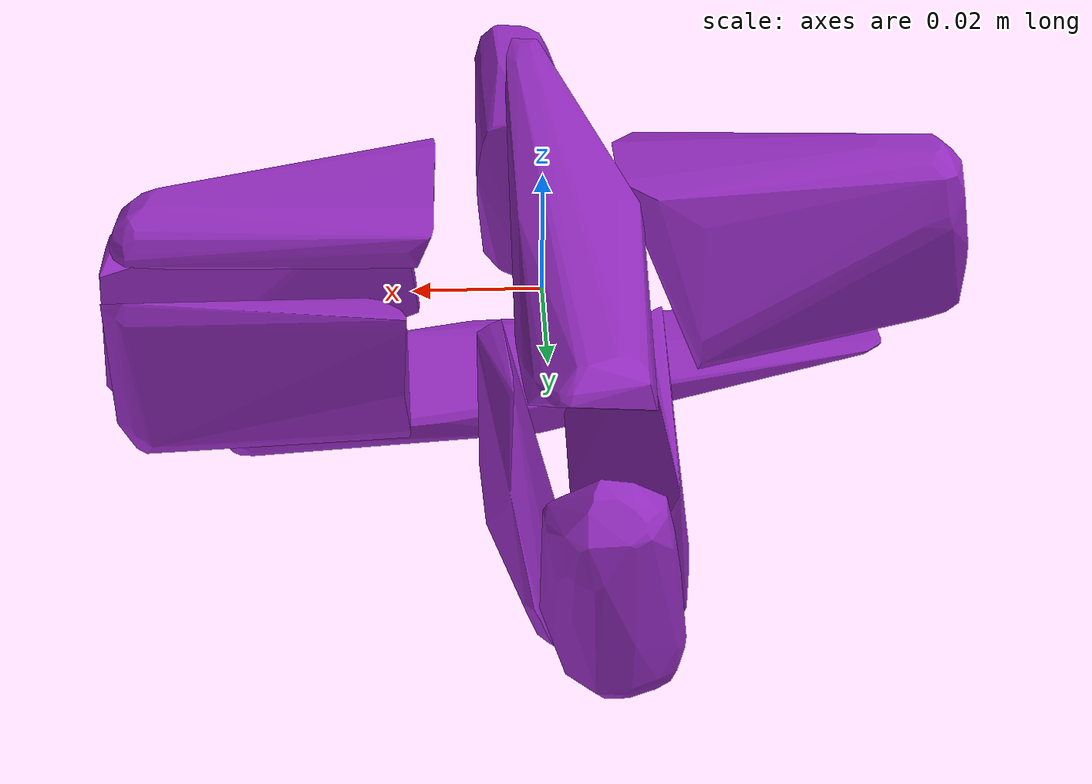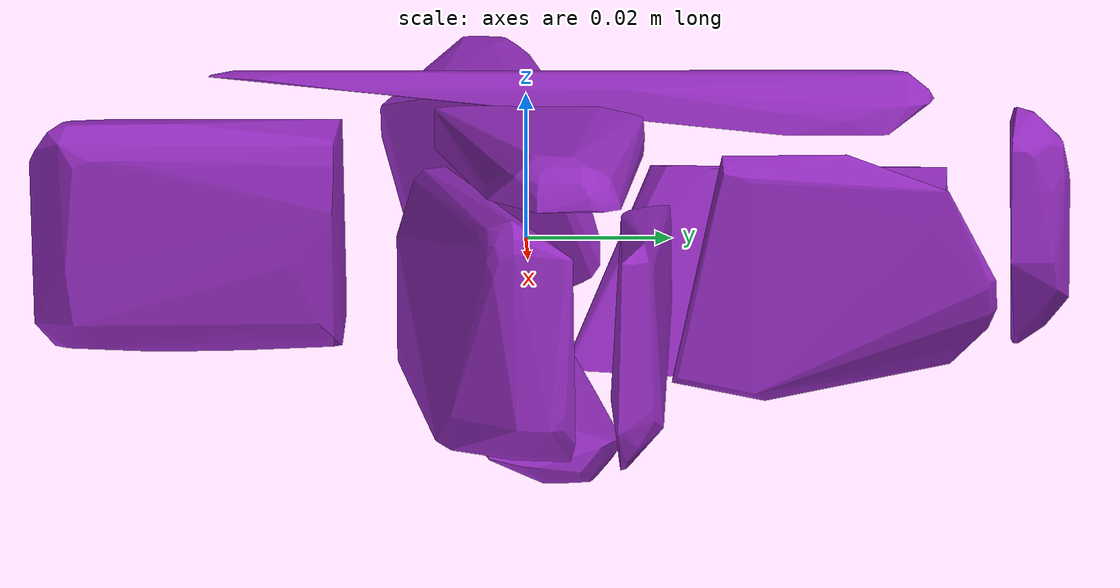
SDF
<?xml version='1.0' encoding='UTF-8'?>
<!-- This SDF was autogenerated by obj_to_drake_sdf.py -->
<sdf version="1.7">
  <model name="plus_video">
    <link name="plus_video">
      <inertial>
        <pose>0 0 0 0 0 0</pose>
        <mass>0.05</mass>
        <inertia>
          <ixx>5.5775205e-05</ixx>
          <iyy>5.9516009e-05</iyy>
          <izz>9.9417919e-05</izz>
          <ixy>-3.379369e-07</ixy>
          <ixz>3.5626887e-06</ixz>
          <iyz>9.5184142e-07</iyz>
        </inertia>
      </inertial>
      <visual name="convex_0">
        <pose>0 0 0 0 0 0</pose>
        <geometry>
          <mesh>
            <uri>plus_video_convex_0.obj</uri>
          </mesh>
        </geometry>
        <material>
          <diffuse>0.5882352941176471 0.17254901960784313 0.7607843137254902 1</diffuse>
        </material>
      </visual>
      <collision name="convex_0_volume">
        <pose>0 0 0 0 0 0</pose>
        <geometry>
          <mesh>
            <uri>plus_video_convex_0.obj</uri>
          </mesh>
        </geometry>
        <drake:proximity_properties xmlns:drake="uri:drake">
          <drake:compliant_hydroelastic/>
          <drake:hydroelastic_modulus> 3.0e7 </drake:hydroelastic_modulus>
          <drake:mesh_resolution_hint> 0.02 </drake:mesh_resolution_hint>
          <drake:hunt_crossley_dissipation>10</drake:hunt_crossley_dissipation>
          <drake:mu_dynamic>0.3</drake:mu_dynamic>
        </drake:proximity_properties>
      </collision>
      <visual name="convex_1">
        <pose>0 0 0 0 0 0</pose>
        <geometry>
          <mesh>
            <uri>plus_video_convex_1.obj</uri>
          </mesh>
        </geometry>
        <material>
          <diffuse>0.5882352941176471 0.17254901960784313 0.7607843137254902 1</diffuse>
        </material>
      </visual>
      <collision name="convex_1_volume">
        <pose>0 0 0 0 0 0</pose>
        <geometry>
          <mesh>
            <uri>plus_video_convex_1.obj</uri>
          </mesh>
        </geometry>
        <drake:proximity_properties xmlns:drake="uri:drake">
          <drake:compliant_hydroelastic/>
          <drake:hydroelastic_modulus> 3.0e7 </drake:hydroelastic_modulus>
          <drake:mesh_resolution_hint> 0.02 </drake:mesh_resolution_hint>
          <drake:hunt_crossley_dissipation>10</drake:hunt_crossley_dissipation>
          <drake:mu_dynamic>0.3</drake:mu_dynamic>
        </drake:proximity_properties>
      </collision>
      <visual name="convex_2">
        <pose>0 0 0 0 0 0</pose>
        <geometry>
          <mesh>
            <uri>plus_video_convex_2.obj</uri>
          </mesh>
        </geometry>
        <material>
          <diffuse>0.5882352941176471 0.17254901960784313 0.7607843137254902 1</diffuse>
        </material>
      </visual>
      <collision name="convex_2_volume">
        <pose>0 0 0 0 0 0</pose>
        <geometry>
          <mesh>
            <uri>plus_video_convex_2.obj</uri>
          </mesh>
        </geometry>
        <drake:proximity_properties xmlns:drake="uri:drake">
          <drake:compliant_hydroelastic/>
          <drake:hydroelastic_modulus> 3.0e7 </drake:hydroelastic_modulus>
          <drake:mesh_resolution_hint> 0.02 </drake:mesh_resolution_hint>
          <drake:hunt_crossley_dissipation>10</drake:hunt_crossley_dissipation>
          <drake:mu_dynamic>0.3</drake:mu_dynamic>
        </drake:proximity_properties>
      </collision>
      <visual name="convex_3">
        <pose>0 0 0 0 0 0</pose>
        <geometry>
          <mesh>
            <uri>plus_video_convex_3.obj</uri>
          </mesh>
        </geometry>
        <material>
          <diffuse>0.5882352941176471 0.17254901960784313 0.7607843137254902 1</diffuse>
        </material>
      </visual>
      <collision name="convex_3_volume">
        <pose>0 0 0 0 0 0</pose>
        <geometry>
          <mesh>
            <uri>plus_video_convex_3.obj</uri>
          </mesh>
        </geometry>
        <drake:proximity_properties xmlns:drake="uri:drake">
          <drake:compliant_hydroelastic/>
          <drake:hydroelastic_modulus> 3.0e7 </drake:hydroelastic_modulus>
          <drake:mesh_resolution_hint> 0.02 </drake:mesh_resolution_hint>
          <drake:hunt_crossley_dissipation>10</drake:hunt_crossley_dissipation>
          <drake:mu_dynamic>0.3</drake:mu_dynamic>
        </drake:proximity_properties>
      </collision>
      <visual name="convex_4">
        <pose>0 0 0 0 0 0</pose>
        <geometry>
          <mesh>
            <uri>plus_video_convex_4.obj</uri>
          </mesh>
        </geometry>
        <material>
          <diffuse>0.5882352941176471 0.17254901960784313 0.7607843137254902 1</diffuse>
        </material>
      </visual>
      <collision name="convex_4_volume">
        <pose>0 0 0 0 0 0</pose>
        <geometry>
          <mesh>
            <uri>plus_video_convex_4.obj</uri>
          </mesh>
        </geometry>
        <drake:proximity_properties xmlns:drake="uri:drake">
          <drake:compliant_hydroelastic/>
          <drake:hydroelastic_modulus> 3.0e7 </drake:hydroelastic_modulus>
          <drake:mesh_resolution_hint> 0.02 </drake:mesh_resolution_hint>
          <drake:hunt_crossley_dissipation>10</drake:hunt_crossley_dissipation>
          <drake:mu_dynamic>0.3</drake:mu_dynamic>
        </drake:proximity_properties>
      </collision>
      <visual name="convex_5">
        <pose>0 0 0 0 0 0</pose>
        <geometry>
          <mesh>
            <uri>plus_video_convex_5.obj</uri>
          </mesh>
        </geometry>
        <material>
          <diffuse>0.5882352941176471 0.17254901960784313 0.7607843137254902 1</diffuse>
        </material>
      </visual>
      <collision name="convex_5_volume">
        <pose>0 0 0 0 0 0</pose>
        <geometry>
          <mesh>
            <uri>plus_video_convex_5.obj</uri>
          </mesh>
        </geometry>
        <drake:proximity_properties xmlns:drake="uri:drake">
          <drake:compliant_hydroelastic/>
          <drake:hydroelastic_modulus> 3.0e7 </drake:hydroelastic_modulus>
          <drake:mesh_resolution_hint> 0.02 </drake:mesh_resolution_hint>
          <drake:hunt_crossley_dissipation>10</drake:hunt_crossley_dissipation>
          <drake:mu_dynamic>0.3</drake:mu_dynamic>
        </drake:proximity_properties>
      </collision>
      <visual name="convex_6">
        <pose>0 0 0 0 0 0</pose>
        <geometry>
          <mesh>
            <uri>plus_video_convex_6.obj</uri>
          </mesh>
        </geometry>
        <material>
          <diffuse>0.5882352941176471 0.17254901960784313 0.7607843137254902 1</diffuse>
        </material>
      </visual>
      <collision name="convex_6_volume">
        <pose>0 0 0 0 0 0</pose>
        <geometry>
          <mesh>
            <uri>plus_video_convex_6.obj</uri>
          </mesh>
        </geometry>
        <drake:proximity_properties xmlns:drake="uri:drake">
          <drake:compliant_hydroelastic/>
          <drake:hydroelastic_modulus> 3.0e7 </drake:hydroelastic_modulus>
          <drake:mesh_resolution_hint> 0.02 </drake:mesh_resolution_hint>
          <drake:hunt_crossley_dissipation>10</drake:hunt_crossley_dissipation>
          <drake:mu_dynamic>0.3</drake:mu_dynamic>
        </drake:proximity_properties>
      </collision>
      <visual name="convex_7">
        <pose>0 0 0 0 0 0</pose>
        <geometry>
          <mesh>
            <uri>plus_video_convex_7.obj</uri>
          </mesh>
        </geometry>
        <material>
          <diffuse>0.5882352941176471 0.17254901960784313 0.7607843137254902 1</diffuse>
        </material>
      </visual>
      <collision name="convex_7_volume">
        <pose>0 0 0 0 0 0</pose>
        <geometry>
          <mesh>
            <uri>plus_video_convex_7.obj</uri>
          </mesh>
        </geometry>
        <drake:proximity_properties xmlns:drake="uri:drake">
          <drake:compliant_hydroelastic/>
          <drake:hydroelastic_modulus> 3.0e7 </drake:hydroelastic_modulus>
          <drake:mesh_resolution_hint> 0.02 </drake:mesh_resolution_hint>
          <drake:hunt_crossley_dissipation>10</drake:hunt_crossley_dissipation>
          <drake:mu_dynamic>0.3</drake:mu_dynamic>
        </drake:proximity_properties>
      </collision>
      <visual name="convex_8">
        <pose>0 0 0 0 0 0</pose>
        <geometry>
          <mesh>
            <uri>plus_video_convex_8.obj</uri>
          </mesh>
        </geometry>
        <material>
          <diffuse>0.5882352941176471 0.17254901960784313 0.7607843137254902 1</diffuse>
        </material>
      </visual>
      <collision name="convex_8_volume">
        <pose>0 0 0 0 0 0</pose>
        <geometry>
          <mesh>
            <uri>plus_video_convex_8.obj</uri>
          </mesh>
        </geometry>
        <drake:proximity_properties xmlns:drake="uri:drake">
          <drake:compliant_hydroelastic/>
          <drake:hydroelastic_modulus> 3.0e7 </drake:hydroelastic_modulus>
          <drake:mesh_resolution_hint> 0.02 </drake:mesh_resolution_hint>
          <drake:hunt_crossley_dissipation>10</drake:hunt_crossley_dissipation>
          <drake:mu_dynamic>0.3</drake:mu_dynamic>
        </drake:proximity_properties>
      </collision>
      <visual name="convex_9">
        <pose>0 0 0 0 0 0</pose>
        <geometry>
          <mesh>
            <uri>plus_video_convex_9.obj</uri>
          </mesh>
        </geometry>
        <material>
          <diffuse>0.5882352941176471 0.17254901960784313 0.7607843137254902 1</diffuse>
        </material>
      </visual>
      <collision name="convex_9_volume">
        <pose>0 0 0 0 0 0</pose>
        <geometry>
          <mesh>
            <uri>plus_video_convex_9.obj</uri>
          </mesh>
        </geometry>
        <drake:proximity_properties xmlns:drake="uri:drake">
          <drake:compliant_hydroelastic/>
          <drake:hydroelastic_modulus> 3.0e7 </drake:hydroelastic_modulus>
          <drake:mesh_resolution_hint> 0.02 </drake:mesh_resolution_hint>
          <drake:hunt_crossley_dissipation>10</drake:hunt_crossley_dissipation>
          <drake:mu_dynamic>0.3</drake:mu_dynamic>
        </drake:proximity_properties>
      </collision>
    </link>
  </model>
</sdf>
